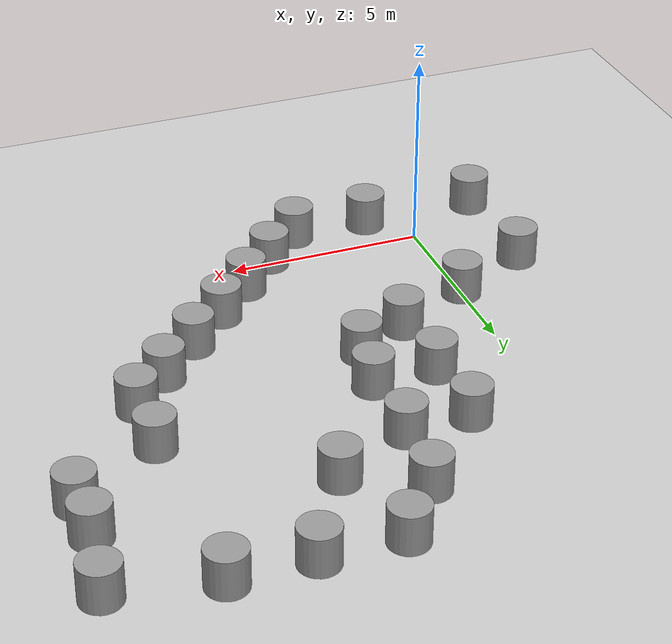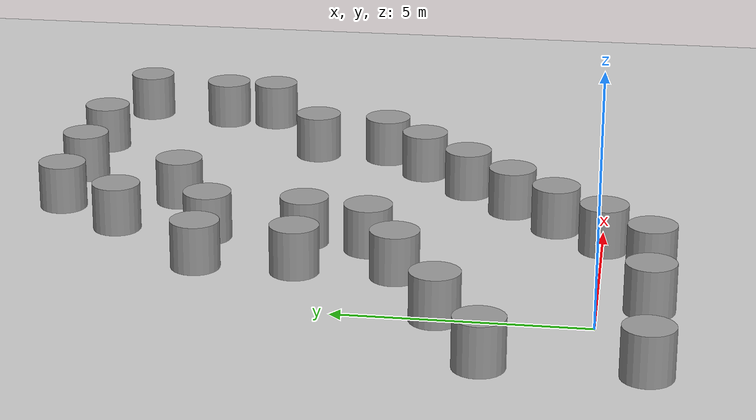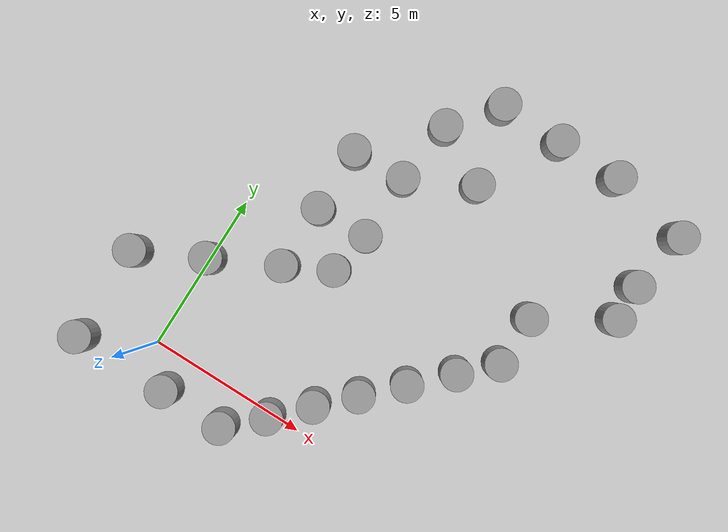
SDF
<sdf version="1.6">
 <world name="default">
  <scene><ambient>0.4 0.4 0.4 1</ambient><background>0.7 0.7 0.7 1</background><shadows>0</shadows></scene>
  <light name="sun" type="directional">
   <cast_shadows>0</cast_shadows>
   <pose>0 0 10 0 -0 0</pose>
   <diffuse>0.8 0.8 0.8 1</diffuse>
   <specular>0.2 0.2 0.2 1</specular>
   <attenuation>
    <range>1000</range>
    <constant>0.9</constant>
    <linear>0.01</linear>
    <quadratic>0.001</quadratic>
   </attenuation>
   <direction>-0.5 0.1 -0.9</direction>
  </light>
  <model name="ground_plane">
   <static>1</static>
   <link name="link">
    <collision name="collision">
     <geometry><plane><normal>0 0 1</normal><size>100 100</size></plane></geometry>
     <surface><friction><ode><mu>100</mu><mu2>50</mu2></ode></friction></surface>
    </collision>
    <visual name="visual">
     <cast_shadows>0</cast_shadows>
     <geometry><plane><normal>0 0 1</normal><size>100 100</size></plane></geometry>
     <material>
      <script><uri>file://media/materials/scripts/gazebo.material</uri><name>Gazebo/Grey</name></script>
     </material>
    </visual>
   </link>
  </model>
  <physics name="default_physics" default="0" type="ode">
   <real_time_update_rate>1000</real_time_update_rate>
   <max_step_size>0.001</max_step_size>
   <real_time_factor>1</real_time_factor>
   <ode>
    <solver>
     <type>quick</type>
     <iters>150</iters>
     <precon_iters>0</precon_iters>
     <sor>1.4</sor>
     <use_dynamic_moi_rescaling>1</use_dynamic_moi_rescaling>
    </solver>
    <constraints>
     <cfm>1e-05</cfm>
     <erp>0.2</erp>
     <contact_max_correcting_vel>2000</contact_max_correcting_vel>
     <contact_surface_layer>0.01</contact_surface_layer>
    </constraints>
   </ode>
  </physics>
  <gravity>0 0 -9.8</gravity>
  <magnetic_field>6e-06 2.3e-05 -4.2e-05</magnetic_field>
  <atmosphere type="adiabatic"/>
  <spherical_coordinates>
   <surface_model>EARTH_WGS84</surface_model>
   <latitude_deg>0</latitude_deg>
   <longitude_deg>0</longitude_deg>
   <elevation>0</elevation>
   <heading_deg>0</heading_deg>
  </spherical_coordinates>
  <model name="unit_cylinder">
   <pose>5 1 0.499998 -4e-06 -4e-06 -0</pose>
   <link name="link">
    <inertial>
     <mass>1</mass>
     <inertia><ixx>0.145833</ixx><ixy>0</ixy><ixz>0</ixz><iyy>0.145833</iyy><iyz>0</iyz><izz>0.125</izz></inertia>
    </inertial>
    <collision name="collision">
     <geometry><cylinder><radius>0.5</radius><length>1</length></cylinder></geometry>
    </collision>
    <visual name="visual">
     <geometry><cylinder><radius>0.5</radius><length>1</length></cylinder></geometry>
     <material>
      <script><name>Gazebo/Grey</name><uri>file://media/materials/scripts/gazebo.material</uri></script>
     </material>
    </visual>
   </link>
  </model>
  <model name="unit_cylinder_0">
   <pose>2 4 0.499998 -4e-06 -4e-06 -0</pose>
   <link name="link">
    <inertial>
     <mass>1</mass>
     <inertia><ixx>0.145833</ixx><ixy>0</ixy><ixz>0</ixz><iyy>0.145833</iyy><iyz>0</iyz><izz>0.125</izz></inertia>
    </inertial>
    <collision name="collision">
     <geometry><cylinder><radius>0.5</radius><length>1</length></cylinder></geometry>
    </collision>
    <visual name="visual">
     <geometry><cylinder><radius>0.5</radius><length>1</length></cylinder></geometry>
     <material>
      <script><name>Gazebo/Grey</name><uri>file://media/materials/scripts/gazebo.material</uri></script>
     </material>
    </visual>
   </link>
  </model>
  <model name="unit_cylinder_2">
   <pose>7 3 0.499998 -4e-06 -4e-06 -0</pose>
   <link name="link">
    <inertial>
     <mass>1</mass>
     <inertia><ixx>0.145833</ixx><ixy>0</ixy><ixz>0</ixz><iyy>0.145833</iyy><iyz>0</iyz><izz>0.125</izz></inertia>
    </inertial>
    <collision name="collision">
     <geometry><cylinder><radius>0.5</radius><length>1</length></cylinder></geometry>
    </collision>
    <visual name="visual">
     <geometry><cylinder><radius>0.5</radius><length>1</length></cylinder></geometry>
     <material>
      <script><name>Gazebo/Grey</name><uri>file://media/materials/scripts/gazebo.material</uri></script>
     </material>
    </visual>
   </link>
  </model>
  <model name="unit_cylinder_4">
   <pose>9 5 0.499998 -4e-06 -4e-06 -0</pose>
   <link name="link">
    <inertial>
     <mass>1</mass>
     <inertia><ixx>0.145833</ixx><ixy>0</ixy><ixz>0</ixz><iyy>0.145833</iyy><iyz>0</iyz><izz>0.125</izz></inertia>
    </inertial>
    <collision name="collision">
     <geometry><cylinder><radius>0.5</radius><length>1</length></cylinder></geometry>
    </collision>
    <visual name="visual">
     <geometry><cylinder><radius>0.5</radius><length>1</length></cylinder></geometry>
     <material>
      <script><name>Gazebo/Grey</name><uri>file://media/materials/scripts/gazebo.material</uri></script>
     </material>
    </visual>
   </link>
  </model>
  <model name="unit_cylinder_5">
   <pose>0.999998 -0.999998 0.499998 -4e-06 -4e-06 -0</pose>
   <link name="link">
    <inertial>
     <mass>1</mass>
     <inertia><ixx>0.145833</ixx><ixy>0</ixy><ixz>0</ixz><iyy>0.145833</iyy><iyz>0</iyz><izz>0.125</izz></inertia>
    </inertial>
    <collision name="collision">
     <geometry><cylinder><radius>0.5</radius><length>1</length></cylinder></geometry>
    </collision>
    <visual name="visual">
     <geometry><cylinder><radius>0.5</radius><length>1</length></cylinder></geometry>
     <material>
      <script><name>Gazebo/Grey</name><uri>file://media/materials/scripts/gazebo.material</uri></script>
     </material>
    </visual>
   </link>
  </model>
  <model name="unit_cylinder_6">
   <pose>-2 -0.999998 0.499998 -4e-06 -4e-06 -0</pose>
   <link name="link">
    <inertial>
     <mass>1</mass>
     <inertia><ixx>0.145833</ixx><ixy>0</ixy><ixz>0</ixz><iyy>0.145833</iyy><iyz>0</iyz><izz>0.125</izz></inertia>
    </inertial>
    <collision name="collision">
     <geometry><cylinder><radius>0.5</radius><length>1</length></cylinder></geometry>
    </collision>
    <visual name="visual">
     <geometry><cylinder><radius>0.5</radius><length>1</length></cylinder></geometry>
     <material>
      <script><name>Gazebo/Grey</name><uri>file://media/materials/scripts/gazebo.material</uri></script>
     </material>
    </visual>
   </link>
  </model>
  <model name="unit_cylinder_7">
   <pose>-2 2 0.499998 -4e-06 -4e-06 -0</pose>
   <link name="link">
    <inertial>
     <mass>1</mass>
     <inertia><ixx>0.145833</ixx><ixy>0</ixy><ixz>0</ixz><iyy>0.145833</iyy><iyz>0</iyz><izz>0.125</izz></inertia>
    </inertial>
    <collision name="collision">
     <geometry><cylinder><radius>0.5</radius><length>1</length></cylinder></geometry>
    </collision>
    <visual name="visual">
     <geometry><cylinder><radius>0.5</radius><length>1</length></cylinder></geometry>
     <material>
      <script><name>Gazebo/Grey</name><uri>file://media/materials/scripts/gazebo.material</uri></script>
     </material>
    </visual>
   </link>
  </model>
  <model name="unit_cylinder_8">
   <pose>3 -0.999998 0.499998 -4e-06 -4e-06 -0</pose>
   <link name="link">
    <inertial>
     <mass>1</mass>
     <inertia><ixx>0.145833</ixx><ixy>0</ixy><ixz>0</ixz><iyy>0.145833</iyy><iyz>0</iyz><izz>0.125</izz></inertia>
    </inertial>
    <collision name="collision">
     <geometry><cylinder><radius>0.5</radius><length>1</length></cylinder></geometry>
    </collision>
    <visual name="visual">
     <geometry><cylinder><radius>0.5</radius><length>1</length></cylinder></geometry>
     <material>
      <script><name>Gazebo/Grey</name><uri>file://media/materials/scripts/gazebo.material</uri></script>
     </material>
    </visual>
   </link>
  </model>
  <model name="unit_cylinder_9">
   <pose>-2e-06 3 0.499998 -4e-06 -4e-06 -0</pose>
   <link name="link">
    <inertial>
     <mass>1</mass>
     <inertia><ixx>0.145833</ixx><ixy>0</ixy><ixz>0</ixz><iyy>0.145833</iyy><iyz>0</iyz><izz>0.125</izz></inertia>
    </inertial>
    <collision name="collision">
     <geometry><cylinder><radius>0.5</radius><length>1</length></cylinder></geometry>
    </collision>
    <visual name="visual">
     <geometry><cylinder><radius>0.5</radius><length>1</length></cylinder></geometry>
     <material>
      <script><name>Gazebo/Grey</name><uri>file://media/materials/scripts/gazebo.material</uri></script>
     </material>
    </visual>
   </link>
  </model>
  <model name="unit_cylinder_12">
   <pose>11.5 11 0.499998 -4e-06 -4e-06 -0</pose>
   <link name="link">
    <inertial>
     <mass>1</mass>
     <inertia><ixx>0.145833</ixx><ixy>0</ixy><ixz>0</ixz><iyy>0.145833</iyy><iyz>0</iyz><izz>0.125</izz></inertia>
    </inertial>
    <collision name="collision">
     <geometry><cylinder><radius>0.5</radius><length>1</length></cylinder></geometry>
    </collision>
    <visual name="visual">
     <geometry><cylinder><radius>0.5</radius><length>1</length></cylinder></geometry>
     <material>
      <script><name>Gazebo/Grey</name><uri>file://media/materials/scripts/gazebo.material</uri></script>
     </material>
    </visual>
   </link>
  </model>
  <model name="unit_cylinder_1">
   <pose>5 11.5 0.499998 -4e-06 -4e-06 -0</pose>
   <link name="link">
    <inertial>
     <mass>1</mass>
     <inertia><ixx>0.145833</ixx><ixy>0</ixy><ixz>0</ixz><iyy>0.145833</iyy><iyz>0</iyz><izz>0.125</izz></inertia>
    </inertial>
    <collision name="collision">
     <geometry><cylinder><radius>0.5</radius><length>1</length></cylinder></geometry>
    </collision>
    <visual name="visual">
     <geometry><cylinder><radius>0.5</radius><length>1</length></cylinder></geometry>
     <material>
      <script><name>Gazebo/Grey</name><uri>file://media/materials/scripts/gazebo.material</uri></script>
     </material>
    </visual>
   </link>
  </model>
  <model name="unit_cylinder_3">
   <pose>7 11.5 0.499998 -4e-06 -4e-06 -0</pose>
   <link name="link">
    <inertial>
     <mass>1</mass>
     <inertia><ixx>0.145833</ixx><ixy>0</ixy><ixz>0</ixz><iyy>0.145833</iyy><iyz>0</iyz><izz>0.125</izz></inertia>
    </inertial>
    <collision name="collision">
     <geometry><cylinder><radius>0.5</radius><length>1</length></cylinder></geometry>
    </collision>
    <visual name="visual">
     <geometry><cylinder><radius>0.5</radius><length>1</length></cylinder></geometry>
     <material>
      <script><name>Gazebo/Grey</name><uri>file://media/materials/scripts/gazebo.material</uri></script>
     </material>
    </visual>
   </link>
  </model>
  <model name="unit_cylinder_10">
   <pose>9 11.5 0.499998 -4e-06 -4e-06 -0</pose>
   <link name="link">
    <inertial>
     <mass>1</mass>
     <inertia><ixx>0.145833</ixx><ixy>0</ixy><ixz>0</ixz><iyy>0.145833</iyy><iyz>0</iyz><izz>0.125</izz></inertia>
    </inertial>
    <collision name="collision">
     <geometry><cylinder><radius>0.5</radius><length>1</length></cylinder></geometry>
    </collision>
    <visual name="visual">
     <geometry><cylinder><radius>0.5</radius><length>1</length></cylinder></geometry>
     <material>
      <script><name>Gazebo/Grey</name><uri>file://media/materials/scripts/gazebo.material</uri></script>
     </material>
    </visual>
   </link>
  </model>
  <model name="unit_cylinder_11">
   <pose>2 8 0.499998 -4e-06 -4e-06 -0</pose>
   <link name="link">
    <inertial>
     <mass>1</mass>
     <inertia><ixx>0.145833</ixx><ixy>0</ixy><ixz>0</ixz><iyy>0.145833</iyy><iyz>0</iyz><izz>0.125</izz></inertia>
    </inertial>
    <collision name="collision">
     <geometry><cylinder><radius>0.5</radius><length>1</length></cylinder></geometry>
    </collision>
    <visual name="visual">
     <geometry><cylinder><radius>0.5</radius><length>1</length></cylinder></geometry>
     <material>
      <script><name>Gazebo/Grey</name><uri>file://media/materials/scripts/gazebo.material</uri></script>
     </material>
    </visual>
   </link>
  </model>
  <model name="unit_cylinder_13">
   <pose>2 6 0.499998 -4e-06 -4e-06 -0</pose>
   <link name="link">
    <inertial>
     <mass>1</mass>
     <inertia><ixx>0.145833</ixx><ixy>0</ixy><ixz>0</ixz><iyy>0.145833</iyy><iyz>0</iyz><izz>0.125</izz></inertia>
    </inertial>
    <collision name="collision">
     <geometry><cylinder><radius>0.5</radius><length>1</length></cylinder></geometry>
    </collision>
    <visual name="visual">
     <geometry><cylinder><radius>0.5</radius><length>1</length></cylinder></geometry>
     <material>
      <script><name>Gazebo/Grey</name><uri>file://media/materials/scripts/gazebo.material</uri></script>
     </material>
    </visual>
   </link>
  </model>
  <model name="unit_cylinder_14">
   <pose>4.0242 -0.021245 0.499993 4e-06 4e-06 -0</pose>
   <link name="link">
    <inertial>
     <mass>1</mass>
     <inertia><ixx>0.145833</ixx><ixy>0</ixy><ixz>0</ixz><iyy>0.145833</iyy><iyz>0</iyz><izz>0.125</izz></inertia>
    </inertial>
    <collision name="collision">
     <geometry><cylinder><radius>0.5</radius><length>1</length></cylinder></geometry>
    </collision>
    <visual name="visual">
     <geometry><cylinder><radius>0.5</radius><length>1</length></cylinder></geometry>
     <material>
      <script><name>Gazebo/Grey</name><uri>file://media/materials/scripts/gazebo.material</uri></script>
     </material>
    </visual>
   </link>
  </model>
  <model name="unit_cylinder_15">
   <pose>5.96534 1.96919 0.499998 -4e-06 -4e-06 -0</pose>
   <link name="link">
    <inertial>
     <mass>1</mass>
     <inertia><ixx>0.145833</ixx><ixy>0</ixy><ixz>0</ixz><iyy>0.145833</iyy><iyz>0</iyz><izz>0.125</izz></inertia>
    </inertial>
    <collision name="collision">
     <geometry><cylinder><radius>0.5</radius><length>1</length></cylinder></geometry>
    </collision>
    <visual name="visual">
     <geometry><cylinder><radius>0.5</radius><length>1</length></cylinder></geometry>
     <material>
      <script><name>Gazebo/Grey</name><uri>file://media/materials/scripts/gazebo.material</uri></script>
     </material>
    </visual>
   </link>
  </model>
  <model name="unit_cylinder_16">
   <pose>8.0556 4.05709 0.499993 4e-06 4e-06 -0</pose>
   <link name="link">
    <inertial>
     <mass>1</mass>
     <inertia><ixx>0.145833</ixx><ixy>0</ixy><ixz>0</ixz><iyy>0.145833</iyy><iyz>0</iyz><izz>0.125</izz></inertia>
    </inertial>
    <collision name="collision">
     <geometry><cylinder><radius>0.5</radius><length>1</length></cylinder></geometry>
    </collision>
    <visual name="visual">
     <geometry><cylinder><radius>0.5</radius><length>1</length></cylinder></geometry>
     <material>
      <script><name>Gazebo/Grey</name><uri>file://media/materials/scripts/gazebo.material</uri></script>
     </material>
    </visual>
   </link>
  </model>
  <model name="unit_cylinder_17">
   <pose>11.1781 9.08008 0.499998 -4e-06 -4e-06 -0</pose>
   <link name="link">
    <inertial>
     <mass>1</mass>
     <inertia><ixx>0.145833</ixx><ixy>0</ixy><ixz>0</ixz><iyy>0.145833</iyy><iyz>0</iyz><izz>0.125</izz></inertia>
    </inertial>
    <collision name="collision">
     <geometry><cylinder><radius>0.5</radius><length>1</length></cylinder></geometry>
    </collision>
    <visual name="visual">
     <geometry><cylinder><radius>0.5</radius><length>1</length></cylinder></geometry>
     <material>
      <script><name>Gazebo/Grey</name><uri>file://media/materials/scripts/gazebo.material</uri></script>
     </material>
    </visual>
   </link>
  </model>
  <model name="unit_cylinder_18">
   <pose>11.2128 7.95187 0.499993 4e-06 4e-06 -0</pose>
   <link name="link">
    <inertial>
     <mass>1</mass>
     <inertia><ixx>0.145833</ixx><ixy>0</ixy><ixz>0</ixz><iyy>0.145833</iyy><iyz>0</iyz><izz>0.125</izz></inertia>
    </inertial>
    <collision name="collision">
     <geometry><cylinder><radius>0.5</radius><length>1</length></cylinder></geometry>
    </collision>
    <visual name="visual">
     <geometry><cylinder><radius>0.5</radius><length>1</length></cylinder></geometry>
     <material>
      <script><name>Gazebo/Grey</name><uri>file://media/materials/scripts/gazebo.material</uri></script>
     </material>
    </visual>
   </link>
  </model>
  <model name="unit_cylinder_19">
   <pose>3.64133 8.07898 0.499993 4e-06 4e-06 -0</pose>
   <link name="link">
    <inertial>
     <mass>1</mass>
     <inertia><ixx>0.145833</ixx><ixy>0</ixy><ixz>0</ixz><iyy>0.145833</iyy><iyz>0</iyz><izz>0.125</izz></inertia>
    </inertial>
    <collision name="collision">
     <geometry><cylinder><radius>0.5</radius><length>1</length></cylinder></geometry>
    </collision>
    <visual name="visual">
     <geometry><cylinder><radius>0.5</radius><length>1</length></cylinder></geometry>
     <material>
      <script><name>Gazebo/Grey</name><uri>file://media/materials/scripts/gazebo.material</uri></script>
     </material>
    </visual>
   </link>
  </model>
  <model name="unit_cylinder_20">
   <pose>3.61615 6.05382 0.499997 -4e-06 -4e-06 -0</pose>
   <link name="link">
    <inertial>
     <mass>1</mass>
     <inertia><ixx>0.145833</ixx><ixy>0</ixy><ixz>0</ixz><iyy>0.145833</iyy><iyz>0</iyz><izz>0.125</izz></inertia>
    </inertial>
    <collision name="collision">
     <geometry><cylinder><radius>0.5</radius><length>1</length></cylinder></geometry>
    </collision>
    <visual name="visual">
     <geometry><cylinder><radius>0.5</radius><length>1</length></cylinder></geometry>
     <material>
      <script><name>Gazebo/Grey</name><uri>file://media/materials/scripts/gazebo.material</uri></script>
     </material>
    </visual>
   </link>
  </model>
  <model name="unit_cylinder_21">
   <pose>3.36967 4.70685 0.499993 4e-06 4e-06 -0</pose>
   <link name="link">
    <inertial>
     <mass>1</mass>
     <inertia><ixx>0.145833</ixx><ixy>0</ixy><ixz>0</ixz><iyy>0.145833</iyy><iyz>0</iyz><izz>0.125</izz></inertia>
    </inertial>
    <collision name="collision">
     <geometry><cylinder><radius>0.5</radius><length>1</length></cylinder></geometry>
    </collision>
    <visual name="visual">
     <geometry><cylinder><radius>0.5</radius><length>1</length></cylinder></geometry>
     <material>
      <script><name>Gazebo/Grey</name><uri>file://media/materials/scripts/gazebo.material</uri></script>
     </material>
    </visual>
   </link>
  </model>
  <model name="unit_cylinder_22">
   <pose>3.87586 10.0538 0.499997 -4e-06 -4e-06 -0</pose>
   <link name="link">
    <inertial>
     <mass>1</mass>
     <inertia><ixx>0.145833</ixx><ixy>0</ixy><ixz>0</ixz><iyy>0.145833</iyy><iyz>0</iyz><izz>0.125</izz></inertia>
    </inertial>
    <collision name="collision">
     <geometry><cylinder><radius>0.5</radius><length>1</length></cylinder></geometry>
    </collision>
    <visual name="visual">
     <geometry><cylinder><radius>0.5</radius><length>1</length></cylinder></geometry>
     <material>
      <script><name>Gazebo/Grey</name><uri>file://media/materials/scripts/gazebo.material</uri></script>
     </material>
    </visual>
   </link>
  </model>
  <model name="unit_cylinder_23">
   <pose>5.60899 9.09227 0.499993 4e-06 4e-06 -0</pose>
   <link name="link">
    <inertial>
     <mass>1</mass>
     <inertia><ixx>0.145833</ixx><ixy>0</ixy><ixz>0</ixz><iyy>0.145833</iyy><iyz>0</iyz><izz>0.125</izz></inertia>
    </inertial>
    <collision name="collision">
     <geometry><cylinder><radius>0.5</radius><length>1</length></cylinder></geometry>
    </collision>
    <visual name="visual">
     <geometry><cylinder><radius>0.5</radius><length>1</length></cylinder></geometry>
     <material>
      <script><name>Gazebo/Grey</name><uri>file://media/materials/scripts/gazebo.material</uri></script>
     </material>
    </visual>
   </link>
  </model>
  <model name="unit_cylinder_24">
   <pose>9.03262 6.59527 0.499997 -4e-06 -4e-06 -0</pose>
   <link name="link">
    <inertial>
     <mass>1</mass>
     <inertia><ixx>0.145833</ixx><ixy>0</ixy><ixz>0</ixz><iyy>0.145833</iyy><iyz>0</iyz><izz>0.125</izz></inertia>
    </inertial>
    <collision name="collision">
     <geometry><cylinder><radius>0.5</radius><length>1</length></cylinder></geometry>
    </collision>
    <visual name="visual">
     <geometry><cylinder><radius>0.5</radius><length>1</length></cylinder></geometry>
     <material>
      <script><name>Gazebo/Grey</name><uri>file://media/materials/scripts/gazebo.material</uri></script>
     </material>
    </visual>
   </link>
  </model>
 </world>
</sdf>
